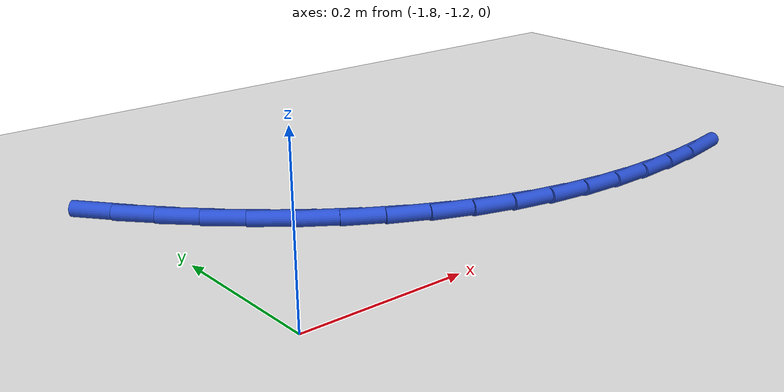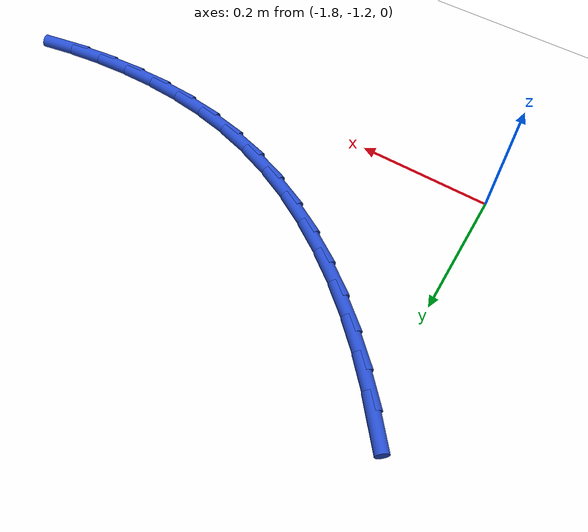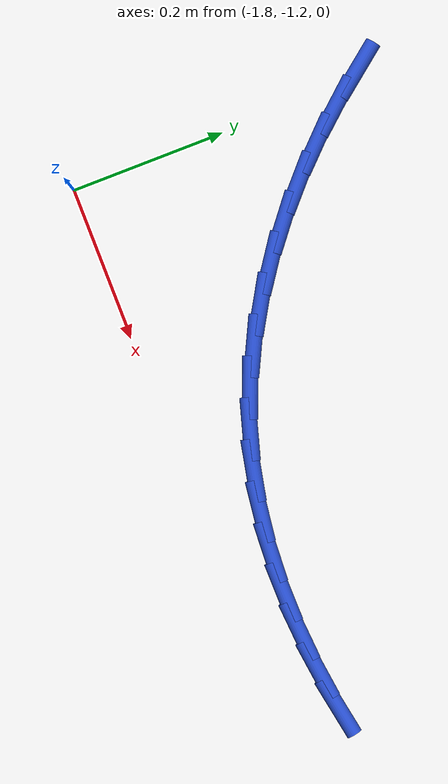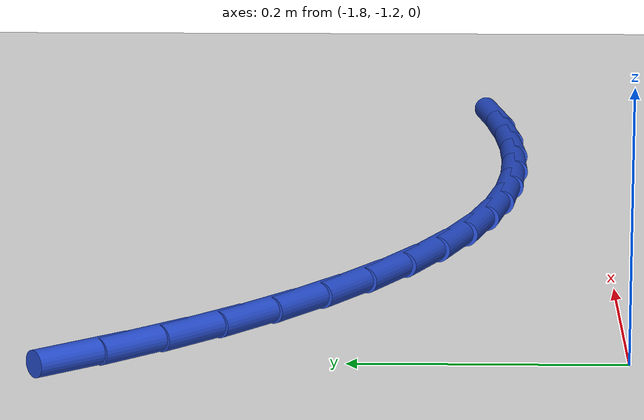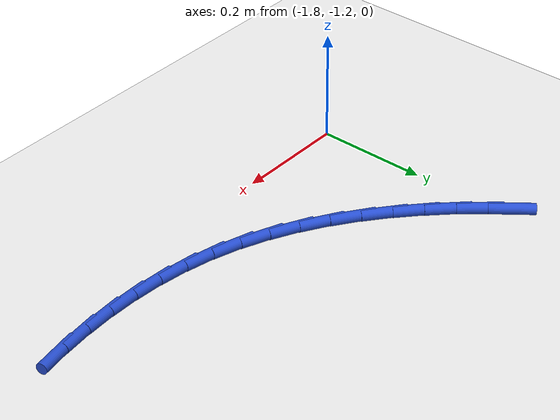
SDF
<sdf version="1.6">
 <world name="default">
  <model name="ground_plane">
   <static>1</static>
   <link name="link">
    <collision name="collision">
     <geometry><plane><normal>0 0 1</normal><size>100 100</size></plane></geometry>
     <surface><friction><ode><mu>100</mu><mu2>50</mu2></ode></friction></surface>
    </collision>
    <visual name="visual">
     <cast_shadows>0</cast_shadows>
     <geometry><plane><normal>0 0 1</normal><size>100 100</size></plane></geometry>
     <material>
      <script><uri>file://media/materials/scripts/gazebo.material</uri><name>Gazebo/WhiteGlow</name></script>
     </material>
    </visual>
   </link>
  </model>
  <model name="line">
   <link name="link_82">
    <pose>-1.812191308814313 -0.814497790180657 0.01 0 1.57 -0.9029151685261322</pose>
    <collision name="collision">
     <geometry><cylinder><radius>0.01</radius><length>0.08</length></cylinder></geometry>
    </collision>
    <visual name="visual">
     <material>
      <script><name>Gazebo/Blue</name><uri>file://media/materials/scripts/gazebo.material</uri></script>
     </material>
     <geometry><cylinder><radius>0.01</radius><length>0.08</length></cylinder></geometry>
    </visual>
   </link>
   <link name="link_83">
    <pose>-1.779469342451893 -0.8559804252469646 0.01 0 1.57 -0.8478247109853404</pose>
    <collision name="collision">
     <geometry><cylinder><radius>0.01</radius><length>0.08</length></cylinder></geometry>
    </collision>
    <visual name="visual">
     <material>
      <script><name>Gazebo/Blue</name><uri>file://media/materials/scripts/gazebo.material</uri></script>
     </material>
     <geometry><cylinder><radius>0.01</radius><length>0.08</length></cylinder></geometry>
    </visual>
   </link>
   <link name="link_84">
    <pose>-1.7442605543852105 -0.8958843407486827 0.01 0 1.57 -0.7909285779305453</pose>
    <collision name="collision">
     <geometry><cylinder><radius>0.01</radius><length>0.08</length></cylinder></geometry>
    </collision>
    <visual name="visual">
     <material>
      <script><name>Gazebo/Blue</name><uri>file://media/materials/scripts/gazebo.material</uri></script>
     </material>
     <geometry><cylinder><radius>0.01</radius><length>0.08</length></cylinder></geometry>
    </visual>
   </link>
   <link name="link_85">
    <pose>-1.70670792992641 -0.9338546425547773 0.01 0 1.57 -0.7314746558661196</pose>
    <collision name="collision">
     <geometry><cylinder><radius>0.01</radius><length>0.08</length></cylinder></geometry>
    </collision>
    <visual name="visual">
     <material>
      <script><name>Gazebo/Blue</name><uri>file://media/materials/scripts/gazebo.material</uri></script>
     </material>
     <geometry><cylinder><radius>0.01</radius><length>0.08</length></cylinder></geometry>
    </visual>
   </link>
   <link name="link_86">
    <pose>-1.6669544543876362 -0.9695364365342145 0.01 0 1.57 -0.6687230099337454</pose>
    <collision name="collision">
     <geometry><cylinder><radius>0.01</radius><length>0.08</length></cylinder></geometry>
    </collision>
    <visual name="visual">
     <material>
      <script><name>Gazebo/Blue</name><uri>file://media/materials/scripts/gazebo.material</uri></script>
     </material>
     <geometry><cylinder><radius>0.01</radius><length>0.08</length></cylinder></geometry>
    </visual>
   </link>
   <link name="link_87">
    <pose>-1.6251431130810359 -1.0025748285559588 0.01 0 1.57 -0.601950565519766</pose>
    <collision name="collision">
     <geometry><cylinder><radius>0.01</radius><length>0.08</length></cylinder></geometry>
    </collision>
    <visual name="visual">
     <material>
      <script><name>Gazebo/Blue</name><uri>file://media/materials/scripts/gazebo.material</uri></script>
     </material>
     <geometry><cylinder><radius>0.01</radius><length>0.08</length></cylinder></geometry>
    </visual>
   </link>
   <link name="link_88">
    <pose>-1.5814168913187527 -1.032614924488976 0.01 0 1.57 -0.5304708472017599</pose>
    <collision name="collision">
     <geometry><cylinder><radius>0.01</radius><length>0.08</length></cylinder></geometry>
    </collision>
    <visual name="visual">
     <material>
      <script><name>Gazebo/Blue</name><uri>file://media/materials/scripts/gazebo.material</uri></script>
     </material>
     <geometry><cylinder><radius>0.01</radius><length>0.08</length></cylinder></geometry>
    </visual>
   </link>
   <link name="link_89">
    <pose>-1.5359187744129323 -1.0593018302022323 0.01 0 1.57 -0.45367305849742967</pose>
    <collision name="collision">
     <geometry><cylinder><radius>0.01</radius><length>0.08</length></cylinder></geometry>
    </collision>
    <visual name="visual">
     <material>
      <script><name>Gazebo/Blue</name><uri>file://media/materials/scripts/gazebo.material</uri></script>
     </material>
     <geometry><cylinder><radius>0.01</radius><length>0.08</length></cylinder></geometry>
    </visual>
   </link>
   <link name="link_90">
    <pose>-1.4887917476757202 -1.0822806515646926 0.01 0 1.57 -0.3710843646057656</pose>
    <collision name="collision">
     <geometry><cylinder><radius>0.01</radius><length>0.08</length></cylinder></geometry>
    </collision>
    <visual name="visual">
     <material>
      <script><name>Gazebo/Blue</name><uri>file://media/materials/scripts/gazebo.material</uri></script>
     </material>
     <geometry><cylinder><radius>0.01</radius><length>0.08</length></cylinder></geometry>
    </visual>
   </link>
   <link name="link_91">
    <pose>-1.44017879641926 -1.1011964944453227 0.01 0 1.57 -0.2839670635747205</pose>
    <collision name="collision">
     <geometry><cylinder><radius>0.01</radius><length>0.08</length></cylinder></geometry>
    </collision>
    <visual name="visual">
     <material>
      <script><name>Gazebo/Blue</name><uri>file://media/materials/scripts/gazebo.material</uri></script>
     </material>
     <geometry><cylinder><radius>0.01</radius><length>0.08</length></cylinder></geometry>
    </visual>
   </link>
   <link name="link_92">
    <pose>-1.3902354448050978 -1.1157726785495643 0.01 0 1.57 -0.20016693477537537</pose>
    <collision name="collision">
     <geometry><cylinder><radius>0.01</radius><length>0.08</length></cylinder></geometry>
    </collision>
    <visual name="visual">
     <material>
      <script><name>Gazebo/Blue</name><uri>file://media/materials/scripts/gazebo.material</uri></script>
     </material>
     <geometry><cylinder><radius>0.01</radius><length>0.08</length></cylinder></geometry>
    </visual>
   </link>
   <link name="link_93">
    <pose>-1.3391810645915667 -1.1261307870388002 0.01 0 1.57 -0.1224078913019553</pose>
    <collision name="collision">
     <geometry><cylinder><radius>0.01</radius><length>0.08</length></cylinder></geometry>
    </collision>
    <visual name="visual">
     <material>
      <script><name>Gazebo/Blue</name><uri>file://media/materials/scripts/gazebo.material</uri></script>
     </material>
     <geometry><cylinder><radius>0.01</radius><length>0.08</length></cylinder></geometry>
    </visual>
   </link>
   <link name="link_94">
    <pose>-1.2872552985617192 -1.132518848058478 0.01 0 1.57 -0.05068372937988945</pose>
    <collision name="collision">
     <geometry><cylinder><radius>0.01</radius><length>0.08</length></cylinder></geometry>
    </collision>
    <visual name="visual">
     <material>
      <script><name>Gazebo/Blue</name><uri>file://media/materials/scripts/gazebo.material</uri></script>
     </material>
     <geometry><cylinder><radius>0.01</radius><length>0.08</length></cylinder></geometry>
    </visual>
   </link>
   <link name="link_95">
    <pose>-1.2346977977971536 -1.1351849415180568 0.01 0 1.57 0.015254728422362696</pose>
    <collision name="collision">
     <geometry><cylinder><radius>0.01</radius><length>0.08</length></cylinder></geometry>
    </collision>
    <visual name="visual">
     <material>
      <script><name>Gazebo/Blue</name><uri>file://media/materials/scripts/gazebo.material</uri></script>
     </material>
     <geometry><cylinder><radius>0.01</radius><length>0.08</length></cylinder></geometry>
    </visual>
   </link>
   <link name="link_96">
    <pose>-1.1817482133794688 -1.1343771473269986 0.01 0 1.57 0.07581389853341589</pose>
    <collision name="collision">
     <geometry><cylinder><radius>0.01</radius><length>0.08</length></cylinder></geometry>
    </collision>
    <visual name="visual">
     <material>
      <script><name>Gazebo/Blue</name><uri>file://media/materials/scripts/gazebo.material</uri></script>
     </material>
     <geometry><cylinder><radius>0.01</radius><length>0.08</length></cylinder></geometry>
    </visual>
   </link>
   <link name="link_97">
    <pose>-1.1286461963902625 -1.1303435453947634 0.01 0 1.57 0.1314892451505723</pose>
    <collision name="collision">
     <geometry><cylinder><radius>0.01</radius><length>0.08</length></cylinder></geometry>
    </collision>
    <visual name="visual">
     <material>
      <script><name>Gazebo/Blue</name><uri>file://media/materials/scripts/gazebo.material</uri></script>
     </material>
     <geometry><cylinder><radius>0.01</radius><length>0.08</length></cylinder></geometry>
    </visual>
   </link>
   <link name="link_98">
    <pose>-1.0756313979111327 -1.1233322156308123 0.01 0 1.57 0.18281634768432758</pose>
    <collision name="collision">
     <geometry><cylinder><radius>0.01</radius><length>0.08</length></cylinder></geometry>
    </collision>
    <visual name="visual">
     <material>
      <script><name>Gazebo/Blue</name><uri>file://media/materials/scripts/gazebo.material</uri></script>
     </material>
     <geometry><cylinder><radius>0.01</radius><length>0.08</length></cylinder></geometry>
    </visual>
   </link>
  </model>
 </world>
</sdf>
